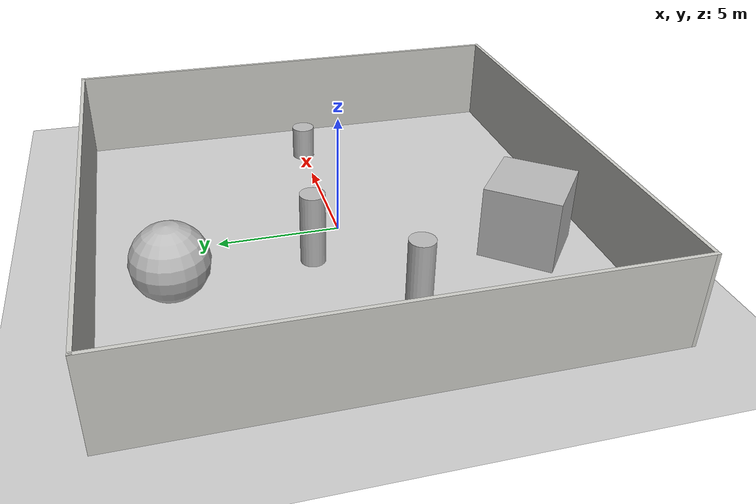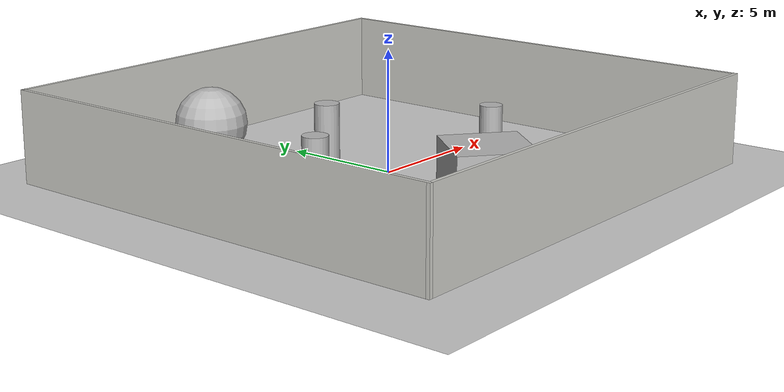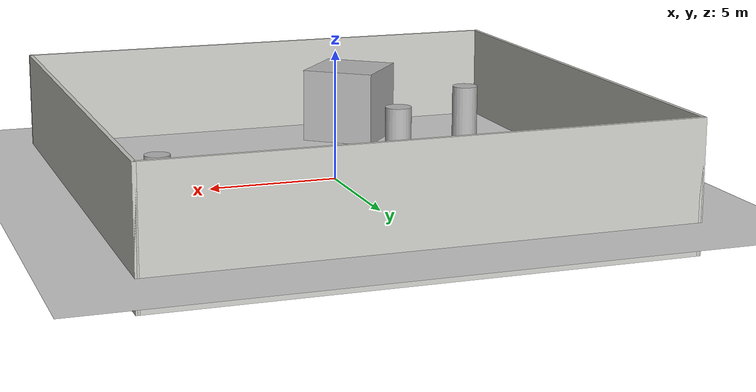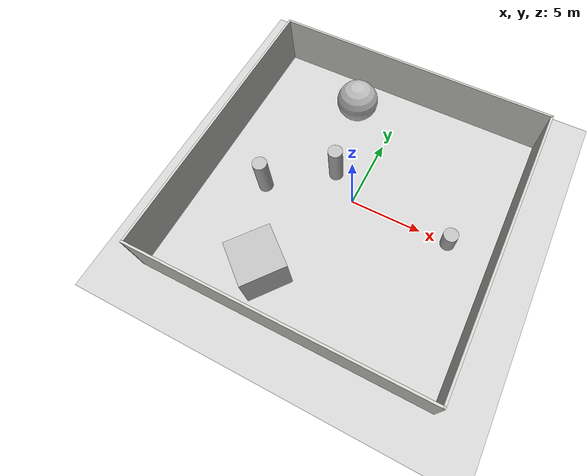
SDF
<sdf version="1.5">
 <world name="default">
  <include><uri>model://sun</uri></include>
  <include><uri>model://ground_plane</uri></include>
  <include><uri>model://Room</uri></include>
  <model name="big_box">
   <pose>-3 -7 1.5 0 0 0.89</pose>
   <link name="link">
    <collision name="collision"><geometry><box><size>3 3 3</size></box></geometry></collision>
    <visual name="visual"><geometry><box><size>3 3 3</size></box></geometry></visual>
   </link>
   <static>1</static>
  </model>
  <model name="big_sphere">
   <pose>-3 7 1.5 0 0 0</pose>
   <link name="link">
    <collision name="collision"><geometry><sphere><radius>1.5</radius></sphere></geometry></collision>
    <visual name="visual"><geometry><sphere><radius>1.5</radius></sphere></geometry></visual>
   </link>
   <static>1</static>
  </model>
  <model name="cylinder1">
   <pose>-6 -1.5 1.5 0 0 0</pose>
   <link name="link">
    <collision name="collision">
     <geometry><cylinder><radius>0.5</radius><length>3.0</length></cylinder></geometry>
    </collision>
    <visual name="visual">
     <geometry><cylinder><radius>0.5</radius><length>3.0</length></cylinder></geometry>
     <material><script>Gazebo/WoodPallet</script></material>
    </visual>
   </link>
  </model>
  <model name="cylinder2">
   <pose>-2 1.5 1.5 0 0 0</pose>
   <link name="link">
    <collision name="collision">
     <geometry><cylinder><radius>0.5</radius><length>3.0</length></cylinder></geometry>
    </collision>
    <visual name="visual">
     <geometry><cylinder><radius>0.5</radius><length>3.0</length></cylinder></geometry>
     <material><script>Gazebo/WoodPallet</script></material>
    </visual>
   </link>
  </model>
  <model name="cylinder3">
   <pose>7 0 0.75 0 0 0</pose>
   <link name="link">
    <collision name="collision">
     <geometry><cylinder><radius>0.5</radius><length>1.5</length></cylinder></geometry>
    </collision>
    <visual name="visual">
     <geometry><cylinder><radius>0.5</radius><length>1.5</length></cylinder></geometry>
     <material><script>Gazebo/WoodPallet</script></material>
    </visual>
   </link>
  </model>
 </world>
</sdf>

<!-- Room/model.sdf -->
<sdf version='1.7'>
  <model name='Room'>
    <pose>-0.057202 -0.004957 0 0 -0 0</pose>
    <link name='Wall_3'>
      <collision name='Wall_3_Collision'>
        <geometry>
          <box>
            <size>20 0.15 5</size>
          </box>
        </geometry>
        <pose>0 0 1.25 0 -0 0</pose>
      </collision>
      <visual name='Wall_3_Visual'>
        <pose>0 0 1.25 0 -0 0</pose>
        <geometry>
          <box>
            <size>20 0.15 5</size>
          </box>
        </geometry>
        <material>
          <script>
            <uri>file://media/materials/scripts/gazebo.material</uri>
            <name>Gazebo/CeilingTiled</name>
          </script>
          <ambient>1 1 1 1</ambient>
        </material>
        <meta>
          <layer>0</layer>
        </meta>
      </visual>
      <pose>-10.05 -0 0 0 -0 1.5708</pose>
    </link>
    <link name='Wall_5'>
      <collision name='Wall_5_Collision'>
        <geometry>
          <box>
            <size>20.25 0.15 5</size>
          </box>
        </geometry>
        <pose>0 0 1.25 0 -0 0</pose>
      </collision>
      <visual name='Wall_5_Visual'>
        <pose>0 0 1.25 0 -0 0</pose>
        <geometry>
          <box>
            <size>20.25 0.15 5</size>
          </box>
        </geometry>
        <material>
          <script>
            <uri>file://media/materials/scripts/gazebo.material</uri>
            <name>Gazebo/CeilingTiled</name>
          </script>
          <ambient>1 1 1 1</ambient>
        </material>
        <meta>
          <layer>0</layer>
        </meta>
      </visual>
      <pose>0 9.925 0 0 -0 0</pose>
    </link>
    <link name='Wall_6'>
      <collision name='Wall_6_Collision'>
        <geometry>
          <box>
            <size>20 0.15 5</size>
          </box>
        </geometry>
        <pose>0 0 1.25 0 -0 0</pose>
      </collision>
      <visual name='Wall_6_Visual'>
        <pose>0 0 1.25 0 -0 0</pose>
        <geometry>
          <box>
            <size>20 0.15 5</size>
          </box>
        </geometry>
        <material>
          <script>
            <uri>file://media/materials/scripts/gazebo.material</uri>
            <name>Gazebo/CeilingTiled</name>
          </script>
          <ambient>1 1 1 1</ambient>
        </material>
        <meta>
          <layer>0</layer>
        </meta>
      </visual>
      <pose>10.05 -0 0 0 -0 -1.5708</pose>
    </link>
    <link name='Wall_7'>
      <collision name='Wall_7_Collision'>
        <geometry>
          <box>
            <size>20.25 0.15 5</size>
          </box>
        </geometry>
        <pose>0 0 1.25 0 -0 0</pose>
      </collision>
      <visual name='Wall_7_Visual'>
        <pose>0 0 1.25 0 -0 0</pose>
        <geometry>
          <box>
            <size>20.25 0.15 5</size>
          </box>
        </geometry>
        <material>
          <script>
            <uri>file://media/materials/scripts/gazebo.material</uri>
            <name>Gazebo/CeilingTiled</name>
          </script>
          <ambient>1 1 1 1</ambient>
        </material>
        <meta>
          <layer>0</layer>
        </meta>
      </visual>
      <pose>0 -9.925 0 0 -0 3.14159</pose>
    </link>
    <static>1</static>
  </model>
</sdf>
